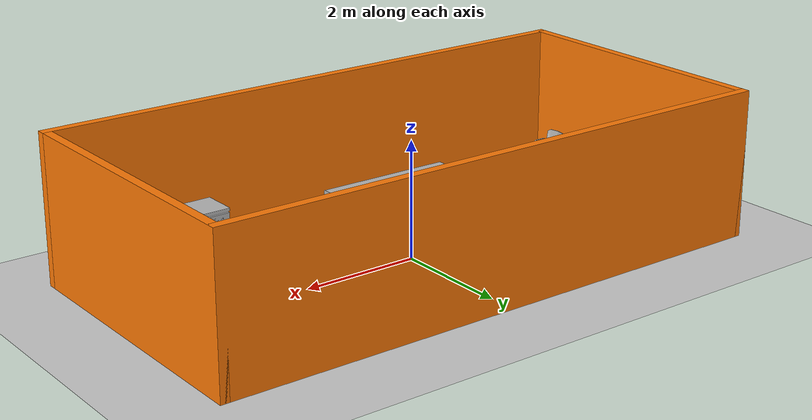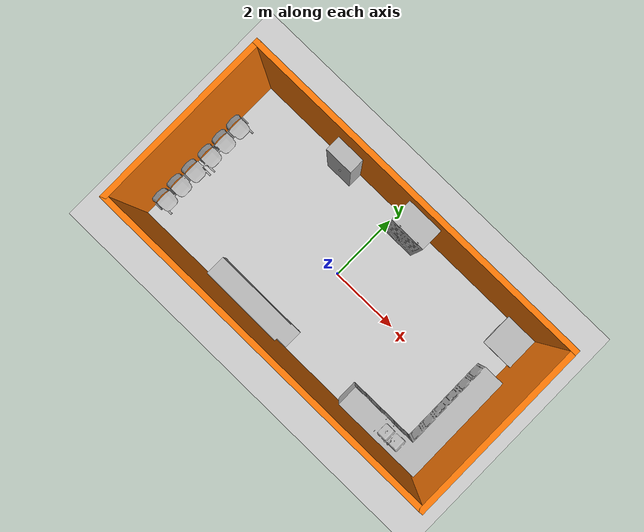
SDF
<sdf version="1.7">
 <world name="default">
  <light name="sun" type="directional">
   <pose>0 0 10 0 -0 0</pose>
   <diffuse>0.8 0.8 0.8 1</diffuse>
   <specular>0.2 0.2 0.2 1</specular>
   <attenuation>
    <range>1000</range>
    <constant>0.9</constant>
    <linear>0.01</linear>
    <quadratic>0.001</quadratic>
   </attenuation>
   <direction>-0.5 0.1 -0.9</direction>
   <spot><inner_angle>0</inner_angle><outer_angle>0</outer_angle><falloff>0</falloff></spot>
  </light>
  <model name="ground_plane">
   <static>1</static>
   <link name="link">
    <collision name="collision">
     <geometry><plane><normal>0 0 1</normal><size>100 100</size></plane></geometry>
     <surface><friction><ode><mu>100</mu><mu2>50</mu2></ode></friction></surface>
    </collision>
    <visual name="visual">
     <cast_shadows>0</cast_shadows>
     <geometry><plane><normal>0 0 1</normal><size>100 100</size></plane></geometry>
     <material>
      <script><uri>file://media/materials/scripts/gazebo.material</uri><name>Gazebo/Grey</name></script>
     </material>
    </visual>
   </link>
  </model>
  <gravity>0 0 -9.8</gravity>
  <magnetic_field>6e-06 2.3e-05 -4.2e-05</magnetic_field>
  <atmosphere type="adiabatic"/>
  <physics type="ode">
   <max_step_size>0.001</max_step_size>
   <real_time_factor>1</real_time_factor>
   <real_time_update_rate>1000</real_time_update_rate>
  </physics>
  <scene><ambient>0.4 0.4 0.4 1</ambient><background>0.7 0.7 0.7 1</background><shadows>1</shadows></scene>
  <spherical_coordinates>
   <surface_model>EARTH_WGS84</surface_model>
   <latitude_deg>0</latitude_deg>
   <longitude_deg>0</longitude_deg>
   <elevation>0</elevation>
   <heading_deg>0</heading_deg>
  </spherical_coordinates>
  <model name="rectangle10x5">
   <pose>0.060758 -0.018473 0 0 -0 0</pose>
   <link name="Wall_11">
    <collision name="Wall_11_Collision">
     <geometry><box><size>10 0.15 2.5</size></box></geometry>
     <pose>0 0 1.25 0 -0 0</pose>
    </collision>
    <visual name="Wall_11_Visual">
     <pose>0 0 1.25 0 -0 0</pose>
     <geometry><box><size>10 0.15 2.5</size></box></geometry>
     <material>
      <script><uri>file://media/materials/scripts/gazebo.material</uri><name>Gazebo/Grey</name></script>
      <ambient>0.996078 0.47451 0.0196078 1</ambient>
     </material>
     <meta><layer>0</layer></meta>
    </visual>
    <pose>-0 2.425 0 0 -0 0</pose>
   </link>
   <link name="Wall_14">
    <collision name="Wall_14_Collision">
     <geometry><box><size>5 0.15 2.5</size></box></geometry>
     <pose>0 0 1.25 0 -0 0</pose>
    </collision>
    <visual name="Wall_14_Visual">
     <pose>0 0 1.25 0 -0 0</pose>
     <geometry><box><size>5 0.15 2.5</size></box></geometry>
     <material>
      <script><uri>file://media/materials/scripts/gazebo.material</uri><name>Gazebo/Grey</name></script>
      <ambient>0.996078 0.47451 0.0196078 1</ambient>
     </material>
     <meta><layer>0</layer></meta>
    </visual>
    <pose>4.925 -0 0 0 -0 -1.5708</pose>
   </link>
   <link name="Wall_15">
    <collision name="Wall_15_Collision">
     <geometry><box><size>10 0.15 2.5</size></box></geometry>
     <pose>0 0 1.25 0 -0 0</pose>
    </collision>
    <visual name="Wall_15_Visual">
     <pose>0 0 1.25 0 -0 0</pose>
     <geometry><box><size>10 0.15 2.5</size></box></geometry>
     <material>
      <script><uri>file://media/materials/scripts/gazebo.material</uri><name>Gazebo/Grey</name></script>
      <ambient>0.996078 0.47451 0.0196078 1</ambient>
     </material>
     <meta><layer>0</layer></meta>
    </visual>
    <pose>-0 -2.425 0 0 -0 3.14159</pose>
   </link>
   <link name="Wall_7">
    <collision name="Wall_7_Collision">
     <geometry><box><size>5 0.15 2.5</size></box></geometry>
     <pose>0 0 1.25 0 -0 0</pose>
    </collision>
    <visual name="Wall_7_Visual">
     <pose>0 0 1.25 0 -0 0</pose>
     <geometry><box><size>5 0.15 2.5</size></box></geometry>
     <material>
      <script><uri>file://media/materials/scripts/gazebo.material</uri><name>Gazebo/Grey</name></script>
      <ambient>0.996078 0.47451 0.0196078 1</ambient>
     </material>
     <meta><layer>0</layer></meta>
    </visual>
    <pose>-4.925 -0 0 0 -0 -1.5708</pose>
   </link>
   <static>1</static>
  </model>
  <light name="sun" type="directional">
   <pose>0.568035 -0.285738 10 0 -0 0</pose>
   <diffuse>0.8 0.8 0.8 1</diffuse>
   <specular>0.2 0.2 0.2 1</specular>
   <attenuation>
    <range>1000</range>
    <constant>0.9</constant>
    <linear>0.01</linear>
    <quadratic>0.001</quadratic>
   </attenuation>
   <direction>-0.5 0.1 -0.9</direction>
  </light>
  <model name="WhiteChipChair">
   <static>1</static>
   <link name="body">
    <visual name="visual">
     <geometry><mesh><uri>model://WhiteChipChair/meshes/WhiteChipChair.obj</uri></mesh></geometry>
    </visual>
    <collision name="collision">
     <geometry><mesh><uri>model://WhiteChipChair/meshes/WhiteChipChair_Col.obj</uri></mesh></geometry>
    </collision>
   </link>
   <pose>-4.50706 0.398306 0 0 -0 0</pose>
  </model>
  <model name="WhiteChipChair_0">
   <static>1</static>
   <link name="body">
    <visual name="visual">
     <geometry><mesh><uri>model://WhiteChipChair/meshes/WhiteChipChair.obj</uri></mesh></geometry>
    </visual>
    <collision name="collision">
     <geometry><mesh><uri>model://WhiteChipChair/meshes/WhiteChipChair_Col.obj</uri></mesh></geometry>
    </collision>
   </link>
   <pose>-4.52612 -1.21026 0 0 -0 0</pose>
  </model>
  <model name="cafe_table">
   <static>1</static>
   <link name="link">
    <collision name="surface">
     <pose>0 0 0.755 0 -0 0</pose>
     <geometry><box><size>0.913 0.913 0.04</size></box></geometry>
    </collision>
    <collision name="column">
     <pose>0 0 0.37 0 -0 0</pose>
     <geometry><box><size>0.042 0.042 0.74</size></box></geometry>
    </collision>
    <collision name="base">
     <pose>0 0 0.02 0 -0 0</pose>
     <geometry><box><size>0.56 0.56 0.04</size></box></geometry>
    </collision>
    <visual name="visual">
     <geometry><mesh><uri>model://cafe_table/meshes/cafe_table.dae</uri></mesh></geometry>
    </visual>
   </link>
   <pose>4.3076 1.7893 0 0 -0 0</pose>
  </model>
  <model name="aws_robomaker_residential_KitchenCabinet_01">
   <link name="link">
    <inertial><mass>1</mass></inertial>
    <collision name="collision">
     <geometry>
      <mesh>
       <uri>model://aws_robomaker_residential_KitchenCabinet_01/meshes/aws_KitchenCabinet_01_collision.DAE</uri>
       <scale>1 1 1</scale>
      </mesh>
     </geometry>
    </collision>
    <visual name="visual">
     <geometry>
      <mesh>
       <uri>model://aws_robomaker_residential_KitchenCabinet_01/meshes/aws_KitchenCabinet_01_visual.DAE</uri>
      </mesh>
     </geometry>
     <meta><layer>1</layer></meta>
    </visual>
   </link>
   <static>1</static>
   <pose>3.5893 -0.703597 0 0 0 -3.13782</pose>
  </model>
  <model name="aws_robomaker_residential_Wardrobe_01_0">
   <link name="link">
    <inertial><mass>51.7</mass></inertial>
    <collision name="collision">
     <geometry>
      <mesh>
       <uri>model://aws_robomaker_residential_Wardrobe_01/meshes/aws_Wardrobe_01_collision.DAE</uri>
       <scale>1 1 1</scale>
      </mesh>
     </geometry>
    </collision>
    <visual name="visual">
     <geometry>
      <mesh><uri>model://aws_robomaker_residential_Wardrobe_01/meshes/aws_Wardrobe_01_visual.DAE</uri></mesh>
     </geometry>
     <meta><layer>1</layer></meta>
    </visual>
   </link>
   <static>1</static>
   <pose>0.548102 2.00058 0 0 -0 0</pose>
  </model>
  <model name="aws_robomaker_residential_TVCabinet_01">
   <link name="link">
    <inertial>
     <mass>59.2</mass>
     <inertia><ixx>30.4</ixx><ixy>0</ixy><ixz>0</ixz><iyy>2.56</iyy><iyz>0</iyz><izz>31.38</izz></inertia>
    </inertial>
    <collision name="collision">
     <geometry>
      <mesh>
       <uri>model://aws_robomaker_residential_TVCabinet_01/meshes/aws_TVCabinet_01_collision.DAE</uri>
       <scale>1 1 1</scale>
      </mesh>
     </geometry>
    </collision>
    <visual name="visual">
     <geometry>
      <mesh><uri>model://aws_robomaker_residential_TVCabinet_01/meshes/aws_TVCabinet_01_visual.DAE</uri></mesh>
     </geometry>
     <meta><layer>1</layer></meta>
    </visual>
   </link>
   <static>1</static>
   <pose>-1.02233 -2.05561 0 0 0 -1.57779</pose>
  </model>
  <model name="MetalCabinet">
   <static>1</static>
   <link name="body">
    <visual name="visual">
     <geometry><mesh><uri>model://MetalCabinet/meshes/MetalCabinet.obj</uri></mesh></geometry>
    </visual>
    <collision name="collision">
     <geometry><mesh><uri>model://MetalCabinet/meshes/MetalCabinet.obj</uri></mesh></geometry>
    </collision>
   </link>
   <pose>-1.8301 2.11697 0 0 -0 0</pose>
  </model>
 </world>
</sdf>
